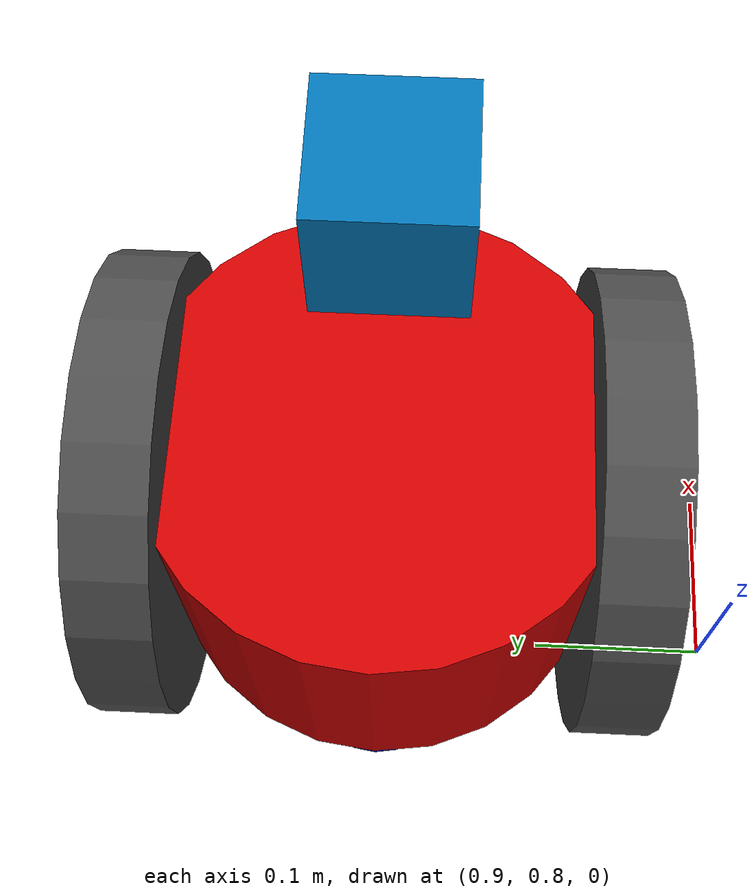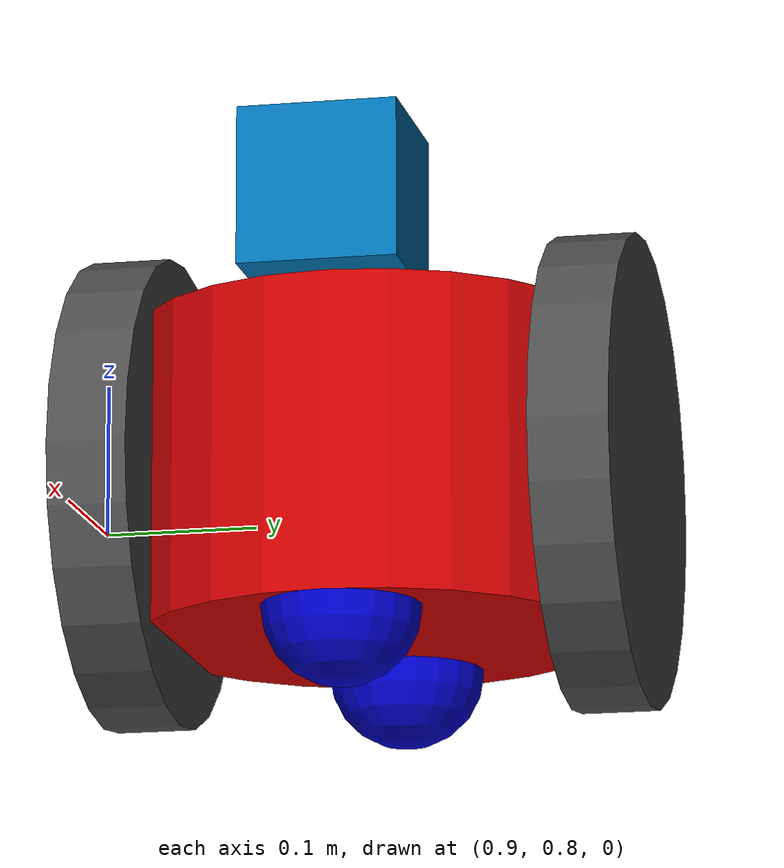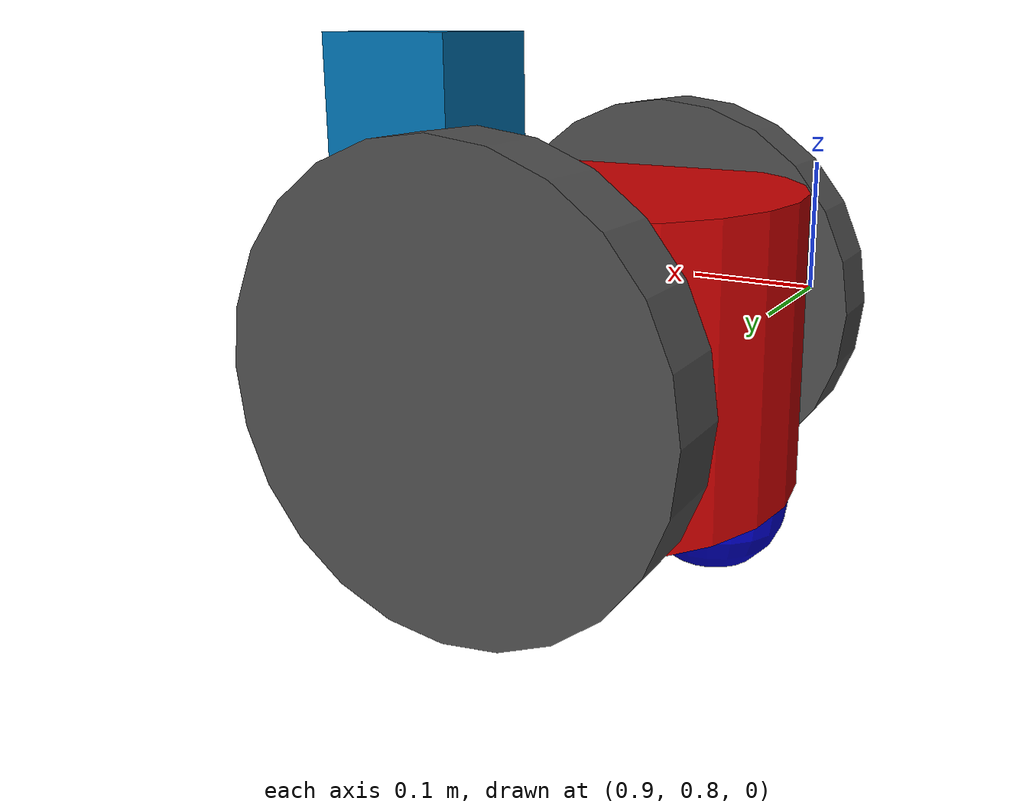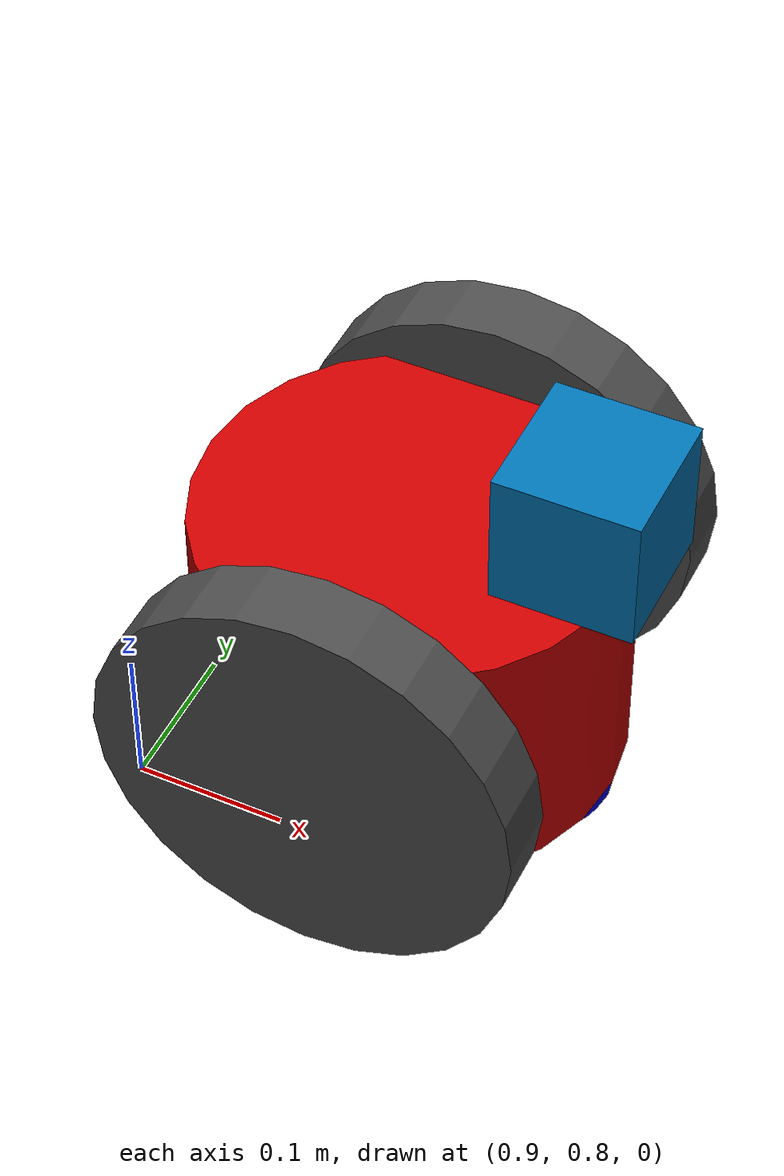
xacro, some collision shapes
<?xml version="1.0"?>
<robot name="slam_bot" xmlns:xacro="http://www.ros.org/wiki/xacro">
<xacro:include filename="$(find slam_project)/urdf/slam_bot.gazebo" />
  <!-- Wheels -->
  <!-- in kg-->
  <!-- Defining the colors used in this robot -->
  <material name="Black">
    <color rgba="0.0 0.0 0.0 1.0"/>
  </material>
  <material name="Red">
    <color rgba="0.8 0.0 0.0 1.0"/>
  </material>
  <material name="White">
    <color rgba="1.0 1.0 1.0 1.0"/>
  </material>
  <material name="Blue">
    <color rgba="0.0 0.0 0.8 1.0"/>
  </material>
  <!-- PROPERTY LIST -->
  <!--All units in m-kg-s-radians unit system -->
  <link name="robot_footprint"></link>
  <joint name="robot_footprint_joint" type="fixed">
    <origin rpy="0 0 0" xyz="1 1 0"/>
    <parent link="robot_footprint"/>
    <child link="chassis"/>
  </joint>
  <!-- BASE-LINK -->
  <!--Actual body/chassis of the robot-->
  <link name="chassis">
    <inertial>
      <mass value="5"/>
      <origin xyz="0 0 0"/>
      <!--The 3x3 rotational inertia matrix. -->
      <inertia ixx="0.0282916666667" ixy="0" ixz="0" iyy="0.0282916666667" iyz="0" izz="0.05625"/>
    </inertial>
    <visual>
      <origin rpy="0 0 0" xyz="0 0 0"/>
      <geometry>
        <cylinder length="0.2" radius="0.15"/>
      </geometry>
      <material name="Red"/>
    </visual>
    <collision>
      <origin rpy="0 0 0 " xyz="0 0 0"/>
      <geometry>
        <cylinder length="0.2" radius="0.15"/>
      </geometry>
    </collision>

    <collision name='back_caster_collision'>
      <origin xyz="-0.1 0 -0.1" rpy=" 0 0 0"/>
      <geometry>
        <sphere radius="0.0499"/>
      </geometry>
    </collision>

    <visual name='back_caster_visual'>
      <origin xyz="-0.1 0 -0.1" rpy=" 0 0 0"/>
      <geometry>
        <sphere radius="0.05"/>
      </geometry>
      <material name="Blue"/>
    </visual>

    <collision name='front_caster_collision'>
      <origin xyz="0.1 0 -0.1" rpy=" 0 0 0"/>
      <geometry>
        <sphere radius="0.0499"/>
      </geometry>
    </collision>

    <visual name='front_caster_visual'>
      <origin xyz="0.1 0 -0.1" rpy=" 0 0 0"/>
      <geometry>
        <sphere radius="0.05"/>
      </geometry>
      <material name="Blue"/>
    </visual>

  </link>
  <!--fb : front, back ; lr: left, right -->
  <link name="right_wheel">
    <visual>
      <origin rpy="1.57079632679 0  0 " xyz="0 0 0"/>
      <geometry>
        <cylinder length="0.05" radius="0.15"/>
      </geometry>
      <material name="DarkGray"/>
    </visual>
    <collision>
      <origin rpy="1.57079632679 0 0 " xyz="0 0 0"/>
      <geometry>
        <cylinder length="0.05" radius="0.15"/>
      </geometry>
    </collision>
    <inertial>
      <mass value="2.5"/>
      <origin xyz="0 0 0"/>
      <inertia ixx="0.00108333333333" ixy="0" ixz="0" iyy="0.00108333333333" iyz="0" izz="0.002"/>
    </inertial>
  </link>
  <joint type="continuous" name="right_wheel_hinge">
    <child link="right_wheel"/>
    <parent link="chassis"/>
    <origin rpy="0 0 0" xyz="0.0 -0.15 0.0"/>
    <axis rpy="0  0" xyz="0 1 0"/>
    <limit effort="10000" velocity="1000"/>
    <dynamics damping="1.0" friction="1.0"/>
  </joint>
  <!--fb : front, back ; lr: left, right -->
  <link name="left_wheel">
    <visual>
      <origin rpy="1.57079632679 0  0 " xyz="0 0 0"/>
      <geometry>
        <cylinder length="0.05" radius="0.15"/>
      </geometry>
      <material name="DarkGray"/>
    </visual>
    <collision>
      <origin rpy="1.57079632679 0 0 " xyz="0 0 0"/>
      <geometry>
        <cylinder length="0.05" radius="0.15"/>
      </geometry>
    </collision>
    <inertial>
      <mass value="2.5"/>
      <origin xyz="0 0 0"/>
      <inertia ixx="0.00108333333333" ixy="0" ixz="0" iyy="0.00108333333333" iyz="0" izz="0.002"/>
    </inertial>
  </link>
  <joint type="continuous" name="left_wheel_hinge">
    <child link="left_wheel"/>
    <parent link="chassis"/>
    <origin rpy="0 0 0" xyz="0.0 0.15 0.0"/>
    <axis rpy="0  0" xyz="0 1 0"/>
    <limit effort="10000" velocity="1000"/>
    <dynamics damping="1.0" friction="1.0"/>
  </joint>
  <!-- Transmission is important to link the joints and the controller -->

  <link name="hokuyo">
    <mass value="0.1"/>
    <origin xyz="0 0 0" rpy="0 0 0"/>
    <inertia
          ixx="1e-6" ixy="0" ixz="0"
          iyy="1e-6" iyz="0"
          izz="1e-6"
    />
    <visual>
      <origin rpy="0 0 0" xyz="0 0 0"/>
      <geometry>
        <mesh filename="package://slam_project/meshes/hokuyo.dae"/>
      </geometry>
    </visual>
    <collision>
      <geometry>
        <box size="0.1 0.1 0.1"/>
      </geometry>
      <origin xyz="0 0 0" rpy="0 0 0"/>
    </collision>
  </link>
  <joint name="hokuyo_joint" type="fixed">
    <origin rpy="0 0 0" xyz="0.125 0 0.15"/>
    <parent link="chassis"/>
    <child link="hokuyo"/>
  </joint>
  <link name="camera">
    <inertial>
      <mass value="0.1"/>
      <origin xyz="0.0 0 0" rpy=" 0 0 0"/>
      <inertia
          ixx="1e-6" ixy="0" ixz="0"
          iyy="1e-6" iyz="0"
          izz="1e-6"
      />
    </inertial>

    <collision name='collision'>
      <origin xyz="0.0 0 0" rpy=" 0 0 0"/>
      <geometry>
        <box size="0.03 0.03 0.03"/>
      </geometry>
    </collision>

    <visual name='camera_visual'>
      <origin xyz="0.0 0 0" rpy=" 0 0 0"/>
      <geometry>
        <box size="0.03 0.03 0.03"/>
      </geometry>
    </visual>
  </link>

  <joint type="fixed" name="camera_joint">
    <origin xyz="0.09 0 0" rpy="0 0 0"/>
    <child link="camera"/>
    <parent link="chassis"/>
    <axis xyz="0 1 0" rpy="0 0 0"/>
    <limit effort="10000" velocity="1000"/>
    <dynamics damping="1.0" friction="1.0"/>
  </joint>

  <link name="camera_rgbd_frame"></link>

  <joint name="camera_rgbd_joint" type="fixed">
    <origin xyz="0 0 0" rpy="-${pi/2} 0 -${pi/2}"/>
    <parent link="camera"/>
    <child link="camera_rgbd_frame"/>
  </joint>

</robot>
